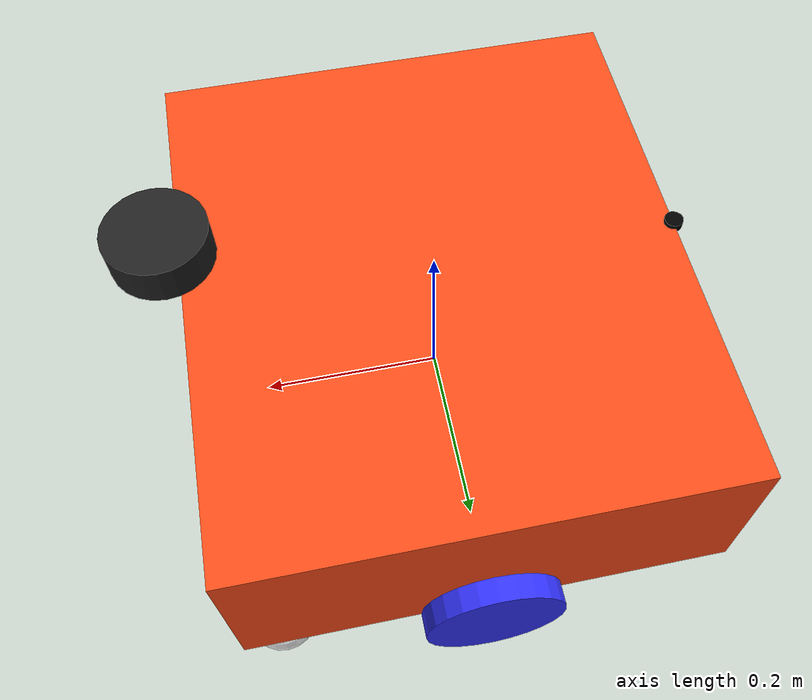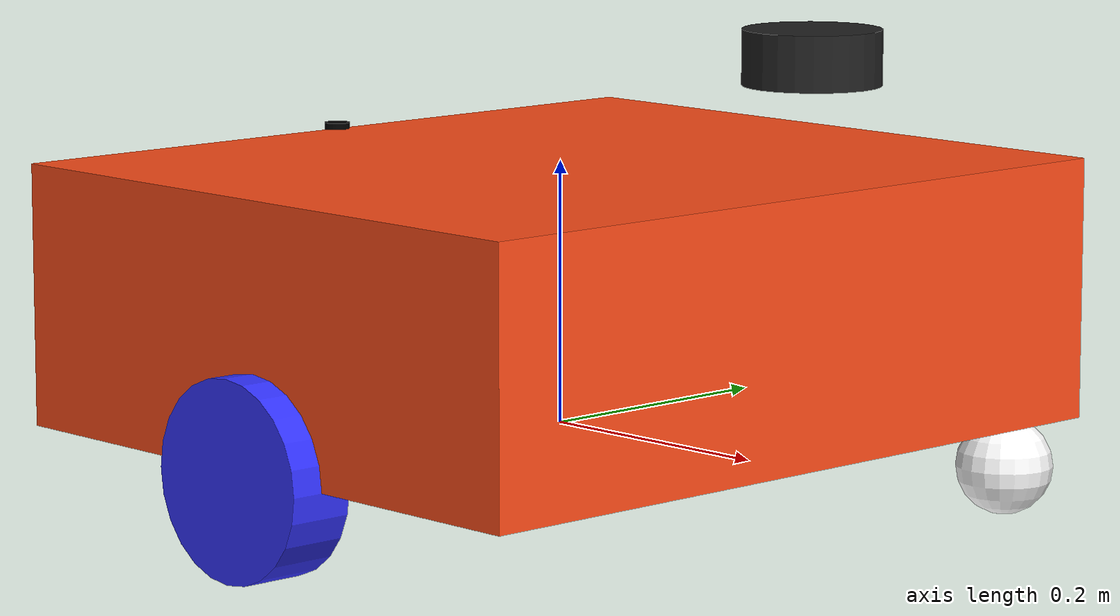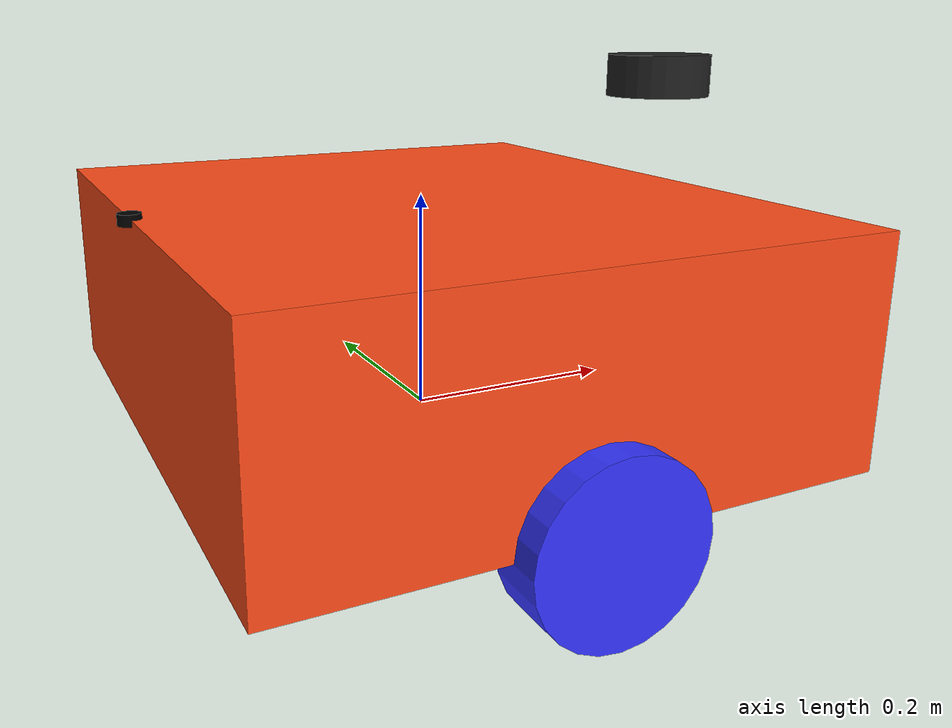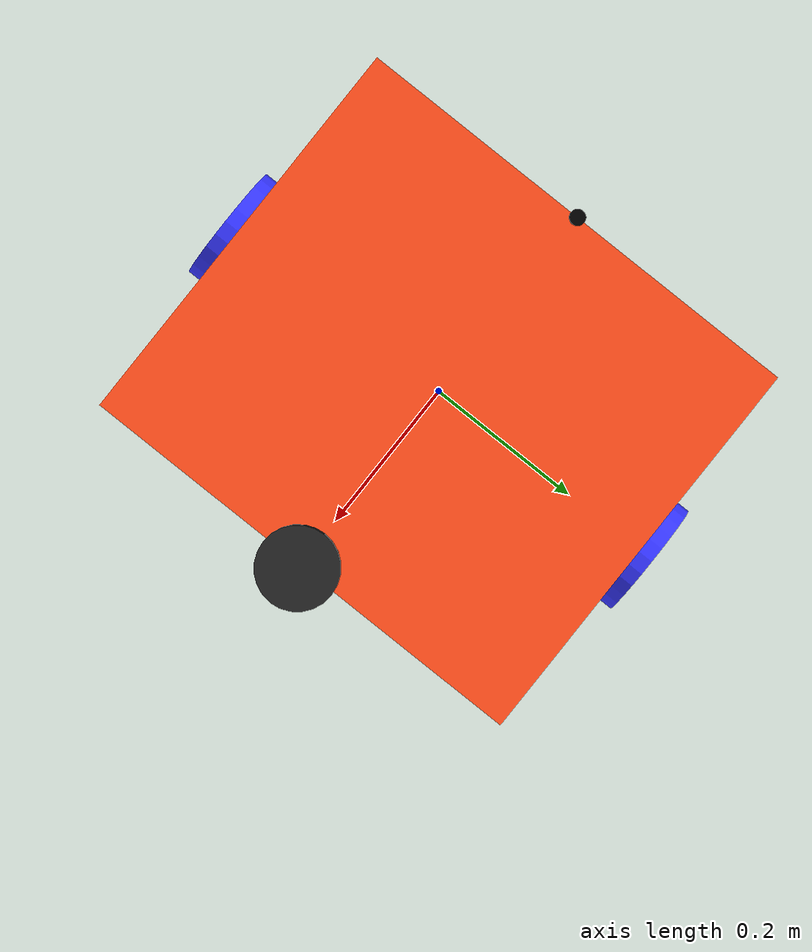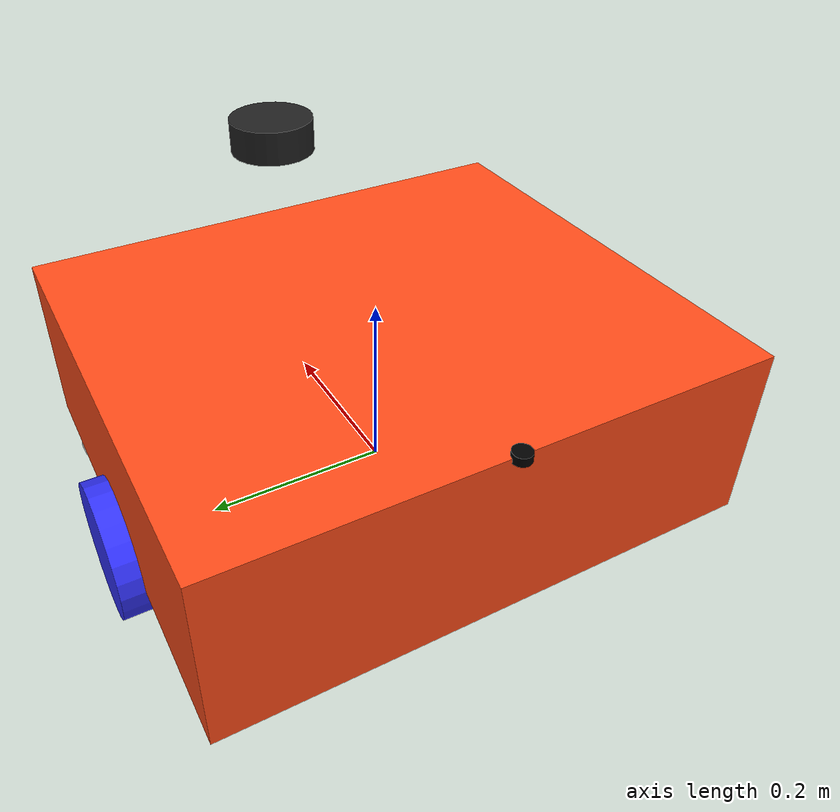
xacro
<?xml version="1.0"?>
<robot xmlns:xacro="http://www.ros.org/wiki/xacro"  name="robot">
<!-- This file has all the components of the body listed.  -->

    <xacro:include filename="robot_core.xacro" />
    <xacro:include filename="ros2_control.xacro" />
    <xacro:include filename="lidar.xacro" />
    <xacro:include filename="imu.xacro" />

</robot>

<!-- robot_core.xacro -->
<robot xmlns:xacro="http://www.ros.org/wiki/xacro">
<!-- This will contain the core structure defined.  -->

    <xacro:include filename="inertial_macros.xacro"/>
    <xacro:include filename="properties.xacro"/>
    <xacro:include filename="material.xacro"/>

    <link name="base_link"></link>

    <link name="base_footprint"></link>

    <!-- BASE_FOOTPRINT LINK -->
    <joint name="base_footprint_joint" type="fixed">
        <parent link="base_link"/>
        <child link="base_footprint"/>
        <origin xyz="0 0 0"/>
    </joint>

    <!-- CHASSIS LINK -->
    <joint name="chassis_joint" type="fixed">
        <parent link="base_link"/>
        <child link="chassis"/>
        <origin xyz="${-wheel_offset_x} 0 0"/>
    </joint>

    <link name="chassis">
        <visual>
            <origin xyz="${chassis_length/2} 0 ${chassis_height/2}"/>
            <geometry>
                <box size="${chassis_length} ${chassis_width} ${chassis_height}"/>
            </geometry>
            <material name="orange"/>
        </visual>
        <collision>
            <origin xyz="${chassis_length/2} 0 ${chassis_height/2}"/>
            <geometry>
                <box size="${chassis_length} ${chassis_width} ${chassis_height}"/>
            </geometry>
        </collision>
        <xacro:inertial_box mass="0.5" x="${chassis_length}" y="${chassis_width}" z="${chassis_height}">
            <origin xyz="${chassis_length/2} 0 ${chassis_height/2}" rpy="0 0 0"/>
        </xacro:inertial_box>
    </link>

    <gazebo reference="chassis">
        <material>Gazebo/Orange</material>
    </gazebo>

    <!-- LEFT WHEEL LINK -->
    <joint name="left_wheel_joint" type="continuous">
        <parent link="base_link"/>
        <child link="left_wheel"/>
        <origin xyz="0 ${wheel_offset_y} 0" rpy="-${pi/2} 0 0" />
        <axis xyz="0 0 1"/>
    </joint>

    <link name="left_wheel">
        <visual>
            <geometry>
                <cylinder radius="${wheel_radius}" length="${wheel_thickness}"/>
            </geometry>
            <material name="blue"/>
        </visual>
        <collision>
            <geometry>
                <sphere radius="${wheel_radius}"/>
            </geometry>
        </collision>
        <xacro:inertial_cylinder mass="${wheel_mass}" length="${wheel_thickness}" radius="${wheel_radius}">
            <origin xyz="0 0 0" rpy="0 0 0"/>
        </xacro:inertial_cylinder>
    </link>

    <gazebo reference="left_wheel">
        <material>Gazebo/Blue</material>
    </gazebo>

 <!-- RIGHT WHEEL LINK -->
    <joint name="right_wheel_joint" type="continuous">
        <parent link="base_link"/>
        <child link="right_wheel"/>
        <origin xyz="0 ${-wheel_offset_y} 0" rpy="${pi/2} 0 0" />
        <axis xyz="0 0 -1"/>
    </joint>

    <link name="right_wheel">
        <visual>
            <geometry>
                <cylinder radius="${wheel_radius}" length="${wheel_thickness}"/>
            </geometry>
            <material name="blue"/>
        </visual>
        <collision>
            <geometry>
                <sphere radius="${wheel_radius}"/>
            </geometry>
        </collision>
        <xacro:inertial_cylinder mass="${wheel_mass}" length="${wheel_thickness}" radius="${wheel_radius}">
            <origin xyz="0 0 0" rpy="0 0 0"/>
        </xacro:inertial_cylinder>
    </link>

    <gazebo reference="right_wheel">
        <material>Gazebo/Blue</material>
    </gazebo>

<!-- CASTER WHEEL -->
    <joint name="caster_wheel_joint" type="fixed">
        <parent link="base_link"/>
        <child link="caster_wheel"/>
        <origin xyz="${caster_wheel_offset_x} ${caster_wheel_offset_y} -${caster_wheel_offset_z}"/>
    </joint>

    <link name="caster_wheel">
        <visual>
            <geometry>
                <sphere radius="${caster_wheel_radius}"/>
            </geometry>
            <material name="white"/>
        </visual>
        <collision>
            <geometry>
                <sphere radius="${caster_wheel_radius}"/>
            </geometry>
        </collision>
        <xacro:inertial_sphere mass="${caster_wheel_mass}" radius="${caster_wheel_radius}">
            <origin xyz="0 0 0" rpy="0 0 0"/>
        </xacro:inertial_sphere>
    </link>

    <gazebo reference="caster_wheel">
        <material>Gazebo/White</material>
        <!--the lesser the value the lesser the friction-->
        <mu1 value="0.000000000000000001"/>
        <mu2 value="0.000000000000000001"/>
    </gazebo>

</robot>

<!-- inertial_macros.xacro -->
<robot xmlns:xacro="http://www.ros.org/wiki/xacro" >
<!-- These make use of xacro's mathematical functionality -->

    <!-- Specify some standard inertial calculations https://en.wikipedia.org/wiki/List_of_moments_of_inertia -->

    <xacro:macro name="inertial_sphere" params="mass radius *origin">
        <inertial>
            <xacro:insert_block name="origin"/>
            <mass value="${mass}" />
            <inertia ixx="${(2/5) * mass * (radius*radius)}" ixy="0.0" ixz="0.0"
                    iyy="${(2/5) * mass * (radius*radius)}" iyz="0.0"
                    izz="${(2/5) * mass * (radius*radius)}" />
        </inertial>
    </xacro:macro>

    <xacro:macro name="inertial_box" params="mass x y z *origin">
        <inertial>
            <xacro:insert_block name="origin"/>
            <mass value="${mass}" />
            <inertia ixx="${(1/12) * mass * (y*y+z*z)}" ixy="0.0" ixz="0.0"
                    iyy="${(1/12) * mass * (x*x+z*z)}" iyz="0.0"
                    izz="${(1/12) * mass * (x*x+y*y)}" />
        </inertial>
    </xacro:macro>

    <xacro:macro name="inertial_cylinder" params="mass length radius *origin">
        <inertial>
            <xacro:insert_block name="origin"/>
            <mass value="${mass}" />
            <inertia ixx="${(1/12) * mass * (3*radius*radius + length*length)}" ixy="0.0" ixz="0.0"
                    iyy="${(1/12) * mass * (3*radius*radius + length*length)}" iyz="0.0"
                    izz="${(1/2) * mass * (radius*radius)}" />
        </inertial>
    </xacro:macro>

</robot>

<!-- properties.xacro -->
<robot xmlns:xacro="http://www.ros.org/wiki/xacro">
<!-- contains all the properties of the bot, one stop shop to change all dimentions  -->

    <xacro:property name="chassis_length" value="0.520"/>
    <xacro:property name="chassis_width" value="0.600"/>
    <xacro:property name="chassis_height" value="0.200"/>

    <xacro:property name="chassis_mass" value="1.0"/>

    <xacro:property name="wheel_radius" value="0.075"/>
    <xacro:property name="wheel_thickness" value="0.051"/>
    <xacro:property name="wheel_mass" value="0.05"/>

    <xacro:property name="wheel_offset_x" value="0.26"/>
    <xacro:property name="wheel_offset_y" value="0.300"/>
    <xacro:property name="wheel_offset_z" value="0"/>

    <xacro:property name="caster_wheel_radius" value="0.0375"/>
    <xacro:property name="caster_wheel_mass" value="0.01"/>

    <xacro:property name="caster_wheel_offset_x" value="0.22"/>
    <xacro:property name="caster_wheel_offset_y" value="0.26"/>
    <xacro:property name="caster_wheel_offset_z" value="0.0375"/>

</robot>

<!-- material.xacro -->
<robot xmlns:xacro="http://www.ros.org/wiki/xacro">
<!-- contains all the materials used for the bot  -->

    <material name="white">
        <color rgba="1 1 1 1" />
    </material>

    <material name="orange">
        <color rgba="1 0.3 0.1 1"/>
    </material>

    <material name="blue">
        <color rgba="0.2 0.2 1 1"/>
    </material>

    <material name="black">
        <color rgba="0 0 0 1"/>
    </material>

    <material name="red">
        <color rgba="1 0 0 1"/>
    </material>

</robot>

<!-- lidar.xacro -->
<robot xmlns:xacro="http://www.ros.org/wiki/xacro">
<!-- Creating lidar on urdf and linking the gazebo plugin to make it work -->

  <joint name="laser_joint" type="fixed">
     <parent link="chassis"/>
     <child link="laser_frame"/>
     <origin xyz="0.520 0 0.280" rpy="0 0 0"/>
   </joint>
   <link name="laser_frame">
      <visual>
         <origin xyz="0 0 0.02"/>
         <geometry>
           <cylinder length="0.04" radius="0.05"/>
         </geometry>
         <material name="laser_material">
            <color rgba="0.13 0.13 0.13 1.0"/>
         </material>
      </visual>
      <collision>
         <origin xyz="0 0 0"/>
         <geometry>
           <cylinder length="0.04" radius="0.05"/>
         </geometry>
      </collision>
     <xacro:inertial_cylinder mass="0.1" length="0.04" radius="0.05">
         <origin xyz="0 0 0" rpy="0 0 0"/>
      </xacro:inertial_cylinder>
   </link>

<!-- 2D Lidar New Gazebo Sensor Plugin  -->
   <gazebo reference="laser_frame">
      <sensor name="laser" type="gpu_lidar">
         <pose> 0 0 0 0 0 0 </pose>
         <always_on>true</always_on> <!-- CHANGE IT BACK WHEN USING IT  -->
         <visualize>true</visualize><!-- CHANGE IT BACK WHEN USING IT  -->
         <update_rate>10</update_rate>
         <topic>scan</topic>
         <gz_frame_id>laser_frame</gz_frame_id>
        <ray>
            <scan>
                <horizontal>
                    <samples>500</samples>
                    <resolution>1</resolution>
                    <min_angle>-1.57</min_angle>
                    <max_angle>1.57</max_angle>
                </horizontal>
            </scan>
            <range>
                <min>0.08</min>
                <max>12.0</max>
                <resolution>0.01</resolution>
            </range>
        </ray>
      </sensor>
   </gazebo>

</robot>

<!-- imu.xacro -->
<robot xmlns:xacro="http://www.ros.org/wiki/xacro">
<!-- adding imu sensor to the urdf  -->

<joint name="imu_joint" type="fixed">
        <parent link="chassis"/>
        <child link="imu_link"/>
        <origin xyz="0 0 0.200" rpy="0 0 0"/>
        <!-- joint rpy according to a few tutorials is 3.14 0 0, where raw is angled at 100 deg -->
        <axis xyz="0 0 0"/>
    </joint>

    <link name="imu_link">
        <visual>
            <origin xyz="0 0 0" rpy="0 0 0"/>
            <geometry>
                <cylinder radius="0.01" length="0.01"/>
            </geometry>
            <material name="black"/>
        </visual>
        <collision>
            <origin xyz="0 0 0" rpy="0 0 0"/>
            <geometry>
                <cylinder radius="0.01" length="0.01"/>
            </geometry>
        </collision>
        <xacro:inertial_cylinder mass="0.01" length="0.01" radius="0.01">
            <origin xyz="0 0 0" rpy="0 0 0"/>
        </xacro:inertial_cylinder>
    </link>

<!-- 2D Lidar New Gazebo Sensor Plugin  -->
   <gazebo reference="imu_link">
        <material>Gazebo/Black</material>

        <sensor name="imu_sensor" type="imu">
            <always_on>true</always_on>
            <update_rate>100</update_rate>
            <visualize>true</visualize>
            <topic>imu</topic>
            <gz_frame_id>imu_link</gz_frame_id>
            <imu>
            <angular_velocity>
                <x>
                <noise type="gaussian">
                    <mean>0.0</mean>
                    <stddev>2e-4</stddev>
                    <bias_mean>0.0000075</bias_mean>
                    <bias_stddev>0.0000008</bias_stddev>
                </noise>
                </x>
                <y>
                <noise type="gaussian">
                    <mean>0.0</mean>
                    <stddev>2e-4</stddev>
                    <bias_mean>0.0000075</bias_mean>
                    <bias_stddev>0.0000008</bias_stddev>
                </noise>
                </y>
                <z>
                <noise type="gaussian">
                    <mean>0.0</mean>
                    <stddev>2e-4</stddev>
                    <bias_mean>0.0000075</bias_mean>
                    <bias_stddev>0.0000008</bias_stddev>
                </noise>
                </z>
            </angular_velocity>
            <linear_acceleration>
                <x>
                <noise type="gaussian">
                    <mean>0.0</mean>
                    <stddev>1.7e-2</stddev>
                    <bias_mean>0.1</bias_mean>
                    <bias_stddev>0.001</bias_stddev>
                </noise>
                </x>
                <y>
                <noise type="gaussian">
                    <mean>0.0</mean>
                    <stddev>1.7e-2</stddev>
                    <bias_mean>0.1</bias_mean>
                    <bias_stddev>0.001</bias_stddev>
                </noise>
                </y>
                <z>
                <noise type="gaussian">
                    <mean>0.0</mean>
                    <stddev>1.7e-2</stddev>
                    <bias_mean>0.1</bias_mean>
                    <bias_stddev>0.001</bias_stddev>
                </noise>
                </z>
            </linear_acceleration>
            </imu>

            <plugin filename="gz-sim-imu-system" name="gz::sim::systems::Imu"></plugin>

        </sensor>

   </gazebo>
</robot>
